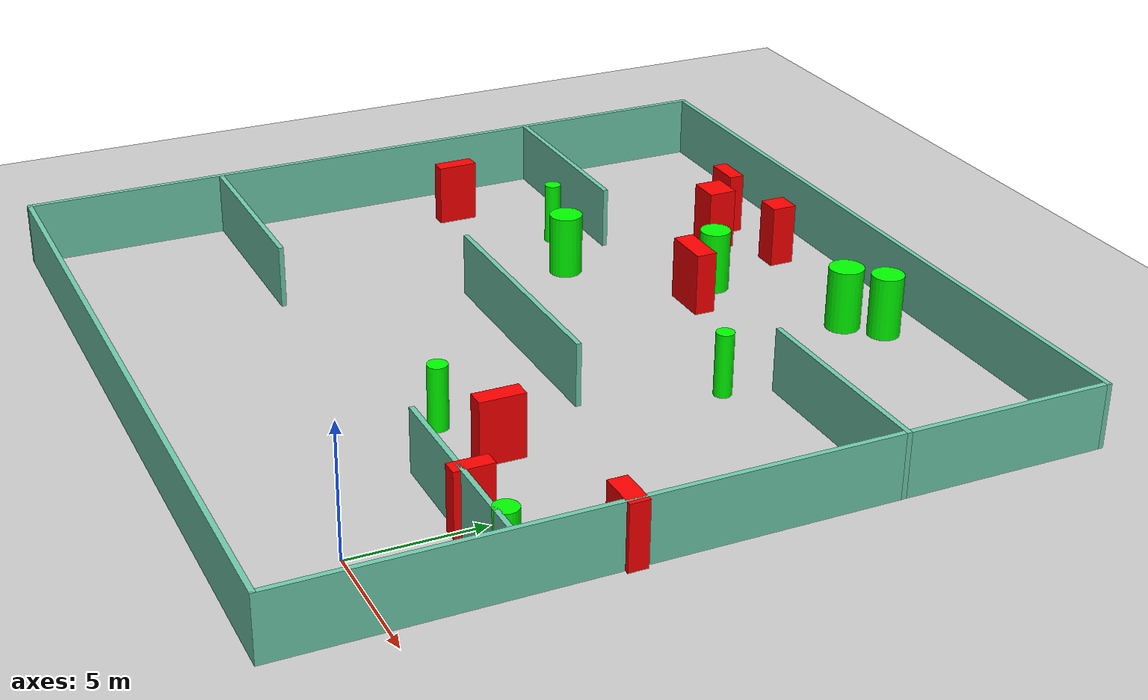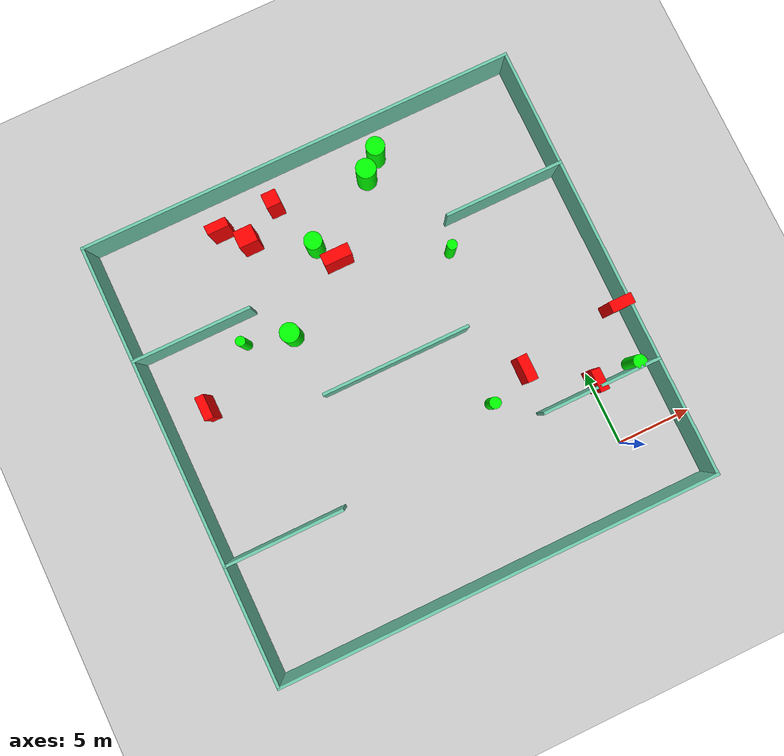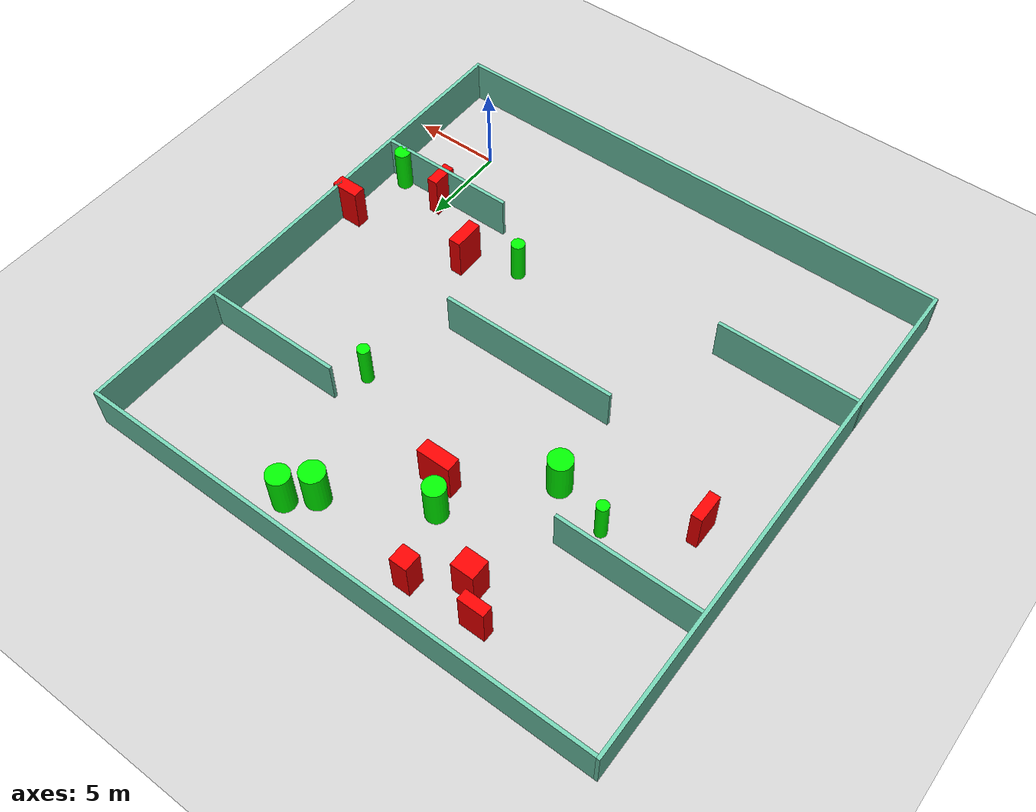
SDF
<sdf version="1.7">
 <world name="default">
  <light name="sun" type="directional">
   <pose>0 0 10 0 -0 0</pose>
   <diffuse>0.8 0.8 0.8 1</diffuse>
   <specular>0.2 0.2 0.2 1</specular>
   <attenuation>
    <range>1000</range>
    <constant>0.9</constant>
    <linear>0.01</linear>
    <quadratic>0.001</quadratic>
   </attenuation>
   <direction>-0.5 0.1 -0.9</direction>
   <spot><inner_angle>0</inner_angle><outer_angle>0</outer_angle><falloff>0</falloff></spot>
  </light>
  <model name="ground_plane">
   <static>1</static>
   <link name="link">
    <collision name="collision">
     <geometry><plane><normal>0 0 1</normal><size>100 100</size></plane></geometry>
     <surface>
      <contact><collide_bitmask>65535</collide_bitmask></contact>
      <friction><ode><mu>100</mu><mu2>50</mu2></ode></friction>
     </surface>
    </collision>
    <visual name="visual">
     <cast_shadows>0</cast_shadows>
     <geometry><plane><normal>0 0 1</normal><size>100 100</size></plane></geometry>
     <material>
      <script><uri>file://media/materials/scripts/gazebo.material</uri><name>Gazebo/Grey</name></script>
     </material>
    </visual>
   </link>
  </model>
  <gravity>0 0 -9.8</gravity>
  <magnetic_field>6e-06 2.3e-05 -4.2e-05</magnetic_field>
  <atmosphere type="adiabatic"/>
  <physics type="ode">
   <max_step_size>0.001</max_step_size>
   <real_time_factor>1</real_time_factor>
   <real_time_update_rate>1000</real_time_update_rate>
  </physics>
  <scene><ambient>0.4 0.4 0.4 1</ambient><background>0.7 0.7 0.7 1</background><shadows>1</shadows></scene>
  <spherical_coordinates>
   <surface_model>EARTH_WGS84</surface_model>
   <latitude_deg>0</latitude_deg>
   <longitude_deg>0</longitude_deg>
   <elevation>0</elevation>
   <heading_deg>0</heading_deg>
  </spherical_coordinates>
  <model name="my_base_walls">
   <link name="Wall_10">
    <collision name="Wall_10_Collision">
     <geometry><box><size>8.2 0.2 2.5</size></box></geometry>
     <pose>0 0 1.25 0 -0 0</pose>
    </collision>
    <visual name="Wall_10_Visual">
     <pose>0 0 1.25 0 -0 0</pose>
     <geometry><box><size>8.2 0.2 2.5</size></box></geometry>
     <material>
      <script><uri>file://media/materials/scripts/gazebo.material</uri><name>Gazebo/Grey</name></script>
      <ambient>0.435294 0.796078 0.67451 1</ambient>
     </material>
     <meta><layer>0</layer></meta>
    </visual>
    <pose>-11 -7 0 0 -0 0</pose>
   </link>
   <link name="Wall_12">
    <collision name="Wall_12_Collision">
     <geometry><box><size>8.2 0.2 2.5</size></box></geometry>
     <pose>0 0 1.25 0 -0 0</pose>
    </collision>
    <visual name="Wall_12_Visual">
     <pose>0 0 1.25 0 -0 0</pose>
     <geometry><box><size>8.2 0.2 2.5</size></box></geometry>
     <material>
      <script><uri>file://media/materials/scripts/gazebo.material</uri><name>Gazebo/Grey</name></script>
      <ambient>0.435294 0.796078 0.67451 1</ambient>
     </material>
     <meta><layer>0</layer></meta>
    </visual>
    <pose>-11 7 0 0 -0 0</pose>
   </link>
   <link name="Wall_14">
    <collision name="Wall_14_Collision">
     <geometry><box><size>8.2 0.2 2.5</size></box></geometry>
     <pose>0 0 1.25 0 -0 0</pose>
    </collision>
    <visual name="Wall_14_Visual">
     <pose>0 0 1.25 0 -0 0</pose>
     <geometry><box><size>8.2 0.2 2.5</size></box></geometry>
     <material>
      <script><uri>file://media/materials/scripts/gazebo.material</uri><name>Gazebo/Grey</name></script>
      <ambient>0.435294 0.796078 0.67451 1</ambient>
     </material>
     <meta><layer>0</layer></meta>
    </visual>
    <pose>11 7 0 0 -0 3.14159</pose>
   </link>
   <link name="Wall_16">
    <collision name="Wall_16_Collision">
     <geometry><box><size>10.2 0.2 2.5</size></box></geometry>
     <pose>0 0 1.25 0 -0 0</pose>
    </collision>
    <visual name="Wall_16_Visual">
     <pose>0 0 1.25 0 -0 0</pose>
     <geometry><box><size>10.2 0.2 2.5</size></box></geometry>
     <material>
      <script><uri>file://media/materials/scripts/gazebo.material</uri><name>Gazebo/Grey</name></script>
      <ambient>0.435294 0.796078 0.67451 1</ambient>
     </material>
     <meta><layer>0</layer></meta>
    </visual>
    <pose>0 0 0 0 -0 3.14159</pose>
   </link>
   <link name="Wall_2">
    <collision name="Wall_2_Collision">
     <geometry><box><size>30.2 0.2 2.5</size></box></geometry>
     <pose>0 0 1.25 0 -0 0</pose>
    </collision>
    <visual name="Wall_2_Visual">
     <pose>0 0 1.25 0 -0 0</pose>
     <geometry><box><size>30.2 0.2 2.5</size></box></geometry>
     <material>
      <script><uri>file://media/materials/scripts/gazebo.material</uri><name>Gazebo/Grey</name></script>
      <ambient>0.435294 0.796078 0.67451 1</ambient>
     </material>
     <meta><layer>0</layer></meta>
    </visual>
    <pose>0 -15 0 0 -0 3.14159</pose>
   </link>
   <link name="Wall_3">
    <collision name="Wall_3_Collision">
     <geometry><box><size>30.2 0.2 2.5</size></box></geometry>
     <pose>0 0 1.25 0 -0 0</pose>
    </collision>
    <visual name="Wall_3_Visual">
     <pose>0 0 1.25 0 -0 0</pose>
     <geometry><box><size>30.2 0.2 2.5</size></box></geometry>
     <material>
      <script><uri>file://media/materials/scripts/gazebo.material</uri><name>Gazebo/Grey</name></script>
      <ambient>0.435294 0.796078 0.67451 1</ambient>
     </material>
     <meta><layer>0</layer></meta>
    </visual>
    <pose>-15 0 0 0 -0 1.5708</pose>
   </link>
   <link name="Wall_4">
    <collision name="Wall_4_Collision">
     <geometry><box><size>30.2 0.2 2.5</size></box></geometry>
     <pose>0 0 1.25 0 -0 0</pose>
    </collision>
    <visual name="Wall_4_Visual">
     <pose>0 0 1.25 0 -0 0</pose>
     <geometry><box><size>30.2 0.2 2.5</size></box></geometry>
     <material>
      <script><uri>file://media/materials/scripts/gazebo.material</uri><name>Gazebo/Grey</name></script>
      <ambient>0.435294 0.796078 0.67451 1</ambient>
     </material>
     <meta><layer>0</layer></meta>
    </visual>
    <pose>0 15 0 0 -0 0</pose>
   </link>
   <link name="Wall_6">
    <collision name="Wall_6_Collision">
     <geometry><box><size>30.2 0.2 2.5</size></box></geometry>
     <pose>0 0 1.25 0 -0 0</pose>
    </collision>
    <visual name="Wall_6_Visual">
     <pose>0 0 1.25 0 -0 0</pose>
     <geometry><box><size>30.2 0.2 2.5</size></box></geometry>
     <material>
      <script><uri>file://media/materials/scripts/gazebo.material</uri><name>Gazebo/Grey</name></script>
      <ambient>0.435294 0.796078 0.67451 1</ambient>
     </material>
     <meta><layer>0</layer></meta>
    </visual>
    <pose>15 0 0 0 -0 1.5708</pose>
   </link>
   <link name="Wall_8">
    <collision name="Wall_8_Collision">
     <geometry><box><size>8.2 0.2 2.5</size></box></geometry>
     <pose>0 0 1.25 0 -0 0</pose>
    </collision>
    <visual name="Wall_8_Visual">
     <pose>0 0 1.25 0 -0 0</pose>
     <geometry><box><size>8.2 0.2 2.5</size></box></geometry>
     <material>
      <script><uri>file://media/materials/scripts/gazebo.material</uri><name>Gazebo/Grey</name></script>
      <ambient>0.435294 0.796078 0.67451 1</ambient>
     </material>
     <meta><layer>0</layer></meta>
    </visual>
    <pose>11 -7 0 0 -0 3.14159</pose>
   </link>
   <static>1</static>
   <pose>-11 11 0 0 -0 0</pose>
  </model>
  <model name="cylinder1">
   <static>1</static>
   <link name="link">
    <inertial>
     <mass>1</mass>
     <inertia><ixx>0.5</ixx><ixy>0</ixy><ixz>0</ixz><iyy>0.5</iyy><iyz>0</iyz><izz>1</izz></inertia>
    </inertial>
    <collision name="collision">
     <geometry><cylinder><radius>0.6332508586661177</radius><length>2.5</length></cylinder></geometry>
    </collision>
    <visual name="visual">
     <geometry><cylinder><radius>0.6332508586661177</radius><length>2.5</length></cylinder></geometry>
     <material>
      <ambient>0 1 0 1</ambient>
      <diffuse>0 1 0 1</diffuse>
      <specular>0.1 0.1 0.1 1</specular>
      <emissive>0 0 0 0</emissive>
     </material>
    </visual>
   </link>
   <pose>-6.278035438488299 24.075323229954403 1.25 0 0 0</pose>
  </model>
  <model name="cylinder2">
   <static>1</static>
   <link name="link">
    <inertial>
     <mass>1</mass>
     <inertia><ixx>0.5</ixx><ixy>0</ixy><ixz>0</ixz><iyy>0.5</iyy><iyz>0</iyz><izz>1</izz></inertia>
    </inertial>
    <collision name="collision">
     <geometry><cylinder><radius>0.6060407408438584</radius><length>2.5</length></cylinder></geometry>
    </collision>
    <visual name="visual">
     <geometry><cylinder><radius>0.6060407408438584</radius><length>2.5</length></cylinder></geometry>
     <material>
      <ambient>0 1 0 1</ambient>
      <diffuse>0 1 0 1</diffuse>
      <specular>0.1 0.1 0.1 1</specular>
      <emissive>0 0 0 0</emissive>
     </material>
    </visual>
   </link>
   <pose>-12.513283160759453 20.170338907636012 1.25 0 0 0</pose>
  </model>
  <model name="cylinder3">
   <static>1</static>
   <link name="link">
    <inertial>
     <mass>1</mass>
     <inertia><ixx>0.5</ixx><ixy>0</ixy><ixz>0</ixz><iyy>0.5</iyy><iyz>0</iyz><izz>1</izz></inertia>
    </inertial>
    <collision name="collision">
     <geometry><cylinder><radius>0.3861936717189729</radius><length>2.5</length></cylinder></geometry>
    </collision>
    <visual name="visual">
     <geometry><cylinder><radius>0.3861936717189729</radius><length>2.5</length></cylinder></geometry>
     <material>
      <ambient>0 1 0 1</ambient>
      <diffuse>0 1 0 1</diffuse>
      <specular>0.1 0.1 0.1 1</specular>
      <emissive>0 0 0 0</emissive>
     </material>
    </visual>
   </link>
   <pose>-6.540220358696423 5.904371616764683 1.25 0 0 0</pose>
  </model>
  <model name="cylinder4">
   <static>1</static>
   <link name="link">
    <inertial>
     <mass>1</mass>
     <inertia><ixx>0.5</ixx><ixy>0</ixy><ixz>0</ixz><iyy>0.5</iyy><iyz>0</iyz><izz>1</izz></inertia>
    </inertial>
    <collision name="collision">
     <geometry><cylinder><radius>0.4523437877014482</radius><length>2.5</length></cylinder></geometry>
    </collision>
    <visual name="visual">
     <geometry><cylinder><radius>0.4523437877014482</radius><length>2.5</length></cylinder></geometry>
     <material>
      <ambient>0 1 0 1</ambient>
      <diffuse>0 1 0 1</diffuse>
      <specular>0.1 0.1 0.1 1</specular>
      <emissive>0 0 0 0</emissive>
     </material>
    </visual>
   </link>
   <pose>2.8323258825960522 4.341981254936728 1.25 0 0 0</pose>
  </model>
  <model name="cylinder5">
   <static>1</static>
   <link name="link">
    <inertial>
     <mass>1</mass>
     <inertia><ixx>0.5</ixx><ixy>0</ixy><ixz>0</ixz><iyy>0.5</iyy><iyz>0</iyz><izz>1</izz></inertia>
    </inertial>
    <collision name="collision">
     <geometry><cylinder><radius>0.3284245392827054</radius><length>2.5</length></cylinder></geometry>
    </collision>
    <visual name="visual">
     <geometry><cylinder><radius>0.3284245392827054</radius><length>2.5</length></cylinder></geometry>
     <material>
      <ambient>0 1 0 1</ambient>
      <diffuse>0 1 0 1</diffuse>
      <specular>0.1 0.1 0.1 1</specular>
      <emissive>0 0 0 0</emissive>
     </material>
    </visual>
   </link>
   <pose>-19.351956926622517 16.27990570210987 1.25 0 0 0</pose>
  </model>
  <model name="cylinder6">
   <static>1</static>
   <link name="link">
    <inertial>
     <mass>1</mass>
     <inertia><ixx>0.5</ixx><ixy>0</ixy><ixz>0</ixz><iyy>0.5</iyy><iyz>0</iyz><izz>1</izz></inertia>
    </inertial>
    <collision name="collision">
     <geometry><cylinder><radius>0.3446508057573666</radius><length>2.5</length></cylinder></geometry>
    </collision>
    <visual name="visual">
     <geometry><cylinder><radius>0.3446508057573666</radius><length>2.5</length></cylinder></geometry>
     <material>
      <ambient>0 1 0 1</ambient>
      <diffuse>0 1 0 1</diffuse>
      <specular>0.1 0.1 0.1 1</specular>
      <emissive>0 0 0 0</emissive>
     </material>
    </visual>
   </link>
   <pose>-4.600659411556411 16.127041215632246 1.25 0 0 0</pose>
  </model>
  <model name="cylinder7">
   <static>1</static>
   <link name="link">
    <inertial>
     <mass>1</mass>
     <inertia><ixx>0.5</ixx><ixy>0</ixy><ixz>0</ixz><iyy>0.5</iyy><iyz>0</iyz><izz>1</izz></inertia>
    </inertial>
    <collision name="collision">
     <geometry><cylinder><radius>0.6593590304951201</radius><length>2.5</length></cylinder></geometry>
    </collision>
    <visual name="visual">
     <geometry><cylinder><radius>0.6593590304951201</radius><length>2.5</length></cylinder></geometry>
     <material>
      <ambient>0 1 0 1</ambient>
      <diffuse>0 1 0 1</diffuse>
      <specular>0.1 0.1 0.1 1</specular>
      <emissive>0 0 0 0</emissive>
     </material>
    </visual>
   </link>
   <pose>-16.333530211134562 15.452723242831873 1.25 0 0 0</pose>
  </model>
  <model name="cylinder8">
   <static>1</static>
   <link name="link">
    <inertial>
     <mass>1</mass>
     <inertia><ixx>0.5</ixx><ixy>0</ixy><ixz>0</ixz><iyy>0.5</iyy><iyz>0</iyz><izz>1</izz></inertia>
    </inertial>
    <collision name="collision">
     <geometry><cylinder><radius>0.6805161012863272</radius><length>2.5</length></cylinder></geometry>
    </collision>
    <visual name="visual">
     <geometry><cylinder><radius>0.6805161012863272</radius><length>2.5</length></cylinder></geometry>
     <material>
      <ambient>0 1 0 1</ambient>
      <diffuse>0 1 0 1</diffuse>
      <specular>0.1 0.1 0.1 1</specular>
      <emissive>0 0 0 0</emissive>
     </material>
    </visual>
   </link>
   <pose>-7.455805997931465 22.997698101710405 1.25 0 0 0</pose>
  </model>
  <model name="box1">
   <static>1</static>
   <link name="link">
    <inertial>
     <mass>1</mass>
     <inertia><ixx>0.083</ixx><ixy>0</ixy><ixz>0</ixz><iyy>0.083</iyy><iyz>0</iyz><izz>0.083</izz></inertia>
    </inertial>
    <collision name="collision">
     <geometry><box><size>1.9232032700019361 0.8202553480708039 2.5</size></box></geometry>
    </collision>
    <visual name="visual">
     <geometry><box><size>1.9232032700019361 0.8202553480708039 2.5</size></box></geometry>
     <material>
      <ambient>1 0 0 1</ambient>
      <diffuse>1 0 0 1</diffuse>
      <specular>0.1 0.1 0.1 1</specular>
      <emissive>0 0 0 0</emissive>
     </material>
    </visual>
    <sensor name="my_contact" type="contact">
     <contact><collision>box_collision</collision><topic>__default_topic__</topic></contact>
    </sensor>
   </link>
   <pose>-11.558581891497667 18.726111813974086 1.25 0 0 0</pose>
  </model>
  <model name="box2">
   <static>1</static>
   <link name="link">
    <inertial>
     <mass>1</mass>
     <inertia><ixx>0.083</ixx><ixy>0</ixy><ixz>0</ixz><iyy>0.083</iyy><iyz>0</iyz><izz>0.083</izz></inertia>
    </inertial>
    <collision name="collision">
     <geometry><box><size>1.4701052640698995 0.6206801730384187 2.5</size></box></geometry>
    </collision>
    <visual name="visual">
     <geometry><box><size>1.4701052640698995 0.6206801730384187 2.5</size></box></geometry>
     <material>
      <ambient>1 0 0 1</ambient>
      <diffuse>1 0 0 1</diffuse>
      <specular>0.1 0.1 0.1 1</specular>
      <emissive>0 0 0 0</emissive>
     </material>
    </visual>
    <sensor name="my_contact" type="contact">
     <contact><collision>box_collision</collision><topic>__default_topic__</topic></contact>
    </sensor>
   </link>
   <pose>-17.690281438035285 23.679154230394346 1.25 0 0 0</pose>
  </model>
  <model name="box3">
   <static>1</static>
   <link name="link">
    <inertial>
     <mass>1</mass>
     <inertia><ixx>0.083</ixx><ixy>0</ixy><ixz>0</ixz><iyy>0.083</iyy><iyz>0</iyz><izz>0.083</izz></inertia>
    </inertial>
    <collision name="collision">
     <geometry><box><size>0.7068596021524801 1.7518004726823873 2.5</size></box></geometry>
    </collision>
    <visual name="visual">
     <geometry><box><size>0.7068596021524801 1.7518004726823873 2.5</size></box></geometry>
     <material>
      <ambient>1 0 0 1</ambient>
      <diffuse>1 0 0 1</diffuse>
      <specular>0.1 0.1 0.1 1</specular>
      <emissive>0 0 0 0</emissive>
     </material>
    </visual>
    <sensor name="my_contact" type="contact">
     <contact><collision>box_collision</collision><topic>__default_topic__</topic></contact>
    </sensor>
   </link>
   <pose>-3.756658891216741 6.992438116869499 1.25 0 0 0</pose>
  </model>
  <model name="box4">
   <static>1</static>
   <link name="link">
    <inertial>
     <mass>1</mass>
     <inertia><ixx>0.083</ixx><ixy>0</ixy><ixz>0</ixz><iyy>0.083</iyy><iyz>0</iyz><izz>0.083</izz></inertia>
    </inertial>
    <collision name="collision">
     <geometry><box><size>1.2893315931722429 1.1449952104476537 2.5</size></box></geometry>
    </collision>
    <visual name="visual">
     <geometry><box><size>1.2893315931722429 1.1449952104476537 2.5</size></box></geometry>
     <material>
      <ambient>1 0 0 1</ambient>
      <diffuse>1 0 0 1</diffuse>
      <specular>0.1 0.1 0.1 1</specular>
      <emissive>0 0 0 0</emissive>
     </material>
    </visual>
    <sensor name="my_contact" type="contact">
     <contact><collision>box_collision</collision><topic>__default_topic__</topic></contact>
    </sensor>
   </link>
   <pose>-16.296606211581583 22.279453275254227 1.25 0 0 0</pose>
  </model>
  <model name="box5">
   <static>1</static>
   <link name="link">
    <inertial>
     <mass>1</mass>
     <inertia><ixx>0.083</ixx><ixy>0</ixy><ixz>0</ixz><iyy>0.083</iyy><iyz>0</iyz><izz>0.083</izz></inertia>
    </inertial>
    <collision name="collision">
     <geometry><box><size>1.5761973713598987 0.7424820507723422 2.5</size></box></geometry>
    </collision>
    <visual name="visual">
     <geometry><box><size>1.5761973713598987 0.7424820507723422 2.5</size></box></geometry>
     <material>
      <ambient>1 0 0 1</ambient>
      <diffuse>1 0 0 1</diffuse>
      <specular>0.1 0.1 0.1 1</specular>
      <emissive>0 0 0 0</emissive>
     </material>
    </visual>
    <sensor name="my_contact" type="contact">
     <contact><collision>box_collision</collision><topic>__default_topic__</topic></contact>
    </sensor>
   </link>
   <pose>3.4820642871627463 8.16167898494374 1.25 0 0 0</pose>
  </model>
  <model name="box6">
   <static>1</static>
   <link name="link">
    <inertial>
     <mass>1</mass>
     <inertia><ixx>0.083</ixx><ixy>0</ixy><ixz>0</ixz><iyy>0.083</iyy><iyz>0</iyz><izz>0.083</izz></inertia>
    </inertial>
    <collision name="collision">
     <geometry><box><size>0.6005432927258318 1.6091732452911418 2.5</size></box></geometry>
    </collision>
    <visual name="visual">
     <geometry><box><size>0.6005432927258318 1.6091732452911418 2.5</size></box></geometry>
     <material>
      <ambient>1 0 0 1</ambient>
      <diffuse>1 0 0 1</diffuse>
      <specular>0.1 0.1 0.1 1</specular>
      <emissive>0 0 0 0</emissive>
     </material>
    </visual>
    <sensor name="my_contact" type="contact">
     <contact><collision>box_collision</collision><topic>__default_topic__</topic></contact>
    </sensor>
   </link>
   <pose>-23.135912686106014 13.455254632960628 1.25 0 0 0</pose>
  </model>
  <model name="box7">
   <static>1</static>
   <link name="link">
    <inertial>
     <mass>1</mass>
     <inertia><ixx>0.083</ixx><ixy>0</ixy><ixz>0</ixz><iyy>0.083</iyy><iyz>0</iyz><izz>0.083</izz></inertia>
    </inertial>
    <collision name="collision">
     <geometry><box><size>0.9948951870543039 0.9933179427998513 2.5</size></box></geometry>
    </collision>
    <visual name="visual">
     <geometry><box><size>0.9948951870543039 0.9933179427998513 2.5</size></box></geometry>
     <material>
      <ambient>1 0 0 1</ambient>
      <diffuse>1 0 0 1</diffuse>
      <specular>0.1 0.1 0.1 1</specular>
      <emissive>0 0 0 0</emissive>
     </material>
    </visual>
    <sensor name="my_contact" type="contact">
     <contact><collision>box_collision</collision><topic>__default_topic__</topic></contact>
    </sensor>
   </link>
   <pose>-13.800866685085746 23.802047251948203 1.25 0 0 0</pose>
  </model>
  <model name="box8">
   <static>1</static>
   <link name="link">
    <inertial>
     <mass>1</mass>
     <inertia><ixx>0.083</ixx><ixy>0</ixy><ixz>0</ixz><iyy>0.083</iyy><iyz>0</iyz><izz>0.083</izz></inertia>
    </inertial>
    <collision name="collision">
     <geometry><box><size>0.6147082398197613 1.4852210259954963 2.5</size></box></geometry>
    </collision>
    <visual name="visual">
     <geometry><box><size>0.6147082398197613 1.4852210259954963 2.5</size></box></geometry>
     <material>
      <ambient>1 0 0 1</ambient>
      <diffuse>1 0 0 1</diffuse>
      <specular>0.1 0.1 0.1 1</specular>
      <emissive>0 0 0 0</emissive>
     </material>
    </visual>
    <sensor name="my_contact" type="contact">
     <contact><collision>box_collision</collision><topic>__default_topic__</topic></contact>
    </sensor>
   </link>
   <pose>0.04552875079933827 4.370194973864708 1.25 0 0 0</pose>
  </model>
 </world>
</sdf>
